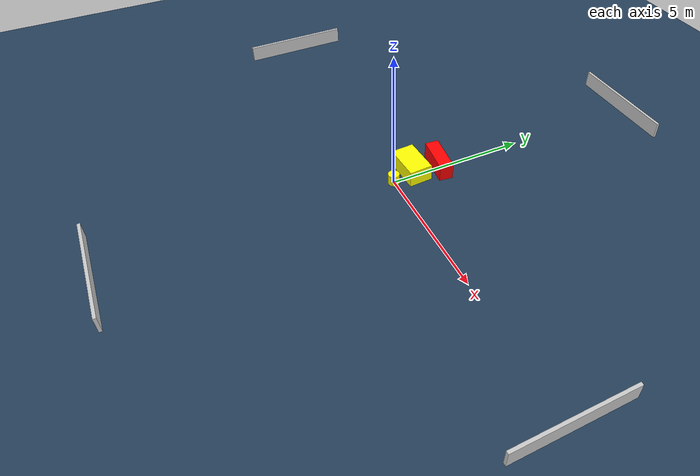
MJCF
<?xml version="1.0" ?>
<mujoco model="generated_environment">
  <option timestep="0.01" integrator="RK4" cone="elliptic"/>
  <default>
    <geom density="1"/>
  </default>
  <asset>
    <texture builtin="gradient" height="3072" name="skybox" rgb1="0.3 0.5 0.7" rgb2="0 0 0" type="skybox" width="512"/>
    <texture builtin="checker" height="300" name="groundplane" rgb1="0.2 0.3 0.4" rgb2="0.1 0.2 0.3" type="2d" width="300"/>
    <material name="groundplane" reflectance="0.2" texrepeat="5 5" texture="groundplane"/>
  </asset>
  <worldbody>
    <light dir="0 0 -1" directional="true" pos="0 0 1.5"/>
    <geom condim="3" friction="0.5 0.005 0.001" material="groundplane" name="floor" pos="0 0 0" size="0 0 0.05" type="plane"/>
    <body name="walls">
      <geom name="wall_1" condim="4" pos="-10.0 0.0 0.3" rgba="0.800000011920929 0.800000011920929 0.800000011920929 1.0" size="0.05 2.0 0.3" type="box"/>
      <geom name="wall_2" condim="4" pos="10.0 0.0 0.3" rgba="0.800000011920929 0.800000011920929 0.800000011920929 1.0" size="0.05 2.0 0.3" type="box"/>
      <geom name="wall_3" condim="4" pos="0.0 -10.0 0.3" rgba="0.800000011920929 0.800000011920929 0.800000011920929 1.0" size="2.0 0.05 0.3" type="box"/>
      <geom name="wall_4" condim="4" pos="0.0 10.0 0.3" rgba="0.800000011920929 0.800000011920929 0.800000011920929 1.0" size="2.0 0.05 0.3" type="box"/>
    </body>
    <body name="robot">
      <joint name="joint_x" type="slide" pos="0 0 0" axis="1 0 0"/>
      <joint name="joint_y" type="slide" pos="0 0 0" axis="0 1 0"/>
      <geom name="robot" type="cylinder" pos="0.0 0.0 0.2" size="0.2 0.2 0.0" mass="5.0" friction="1.0 0.005 0.0001" condim="4" rgba="1.0 1.0 0.0 1.0"/>
    </body>
    <body name="obstacle_1_movable">
      <geom name="obstacle_1_movable" condim="4" pos="-0.25833399469208385 0.8183002716124553 0.3" euler="0 0 182.84738798673473" friction="0.0 0.005 0.001" rgba="1.0 1.0 0.0 1.0" size="0.6766018986900071 0.4225418259513999 0.3" type="box" mass="0.1"/>
      <joint type="free"/>
    </body>
    <body name="obstacle_2_static">
      <geom name="obstacle_2_static" condim="4" pos="-0.07034231831487207 1.8111119012769696 0.3" euler="0 0 353.3122864179183" friction="0.0 0.005 0.001" rgba="1.0 0.0 0.0 1.0" size="0.7115887052974756 0.2452411123037454 0.3" type="box"/>
    </body>
  </worldbody>
  <actuator>
    <motor name="actuator_x" joint="joint_x" gear="1" ctrlrange="-1 1"/>
    <motor name="actuator_y" joint="joint_y" gear="1" ctrlrange="-1 1"/>
  </actuator>
</mujoco>
